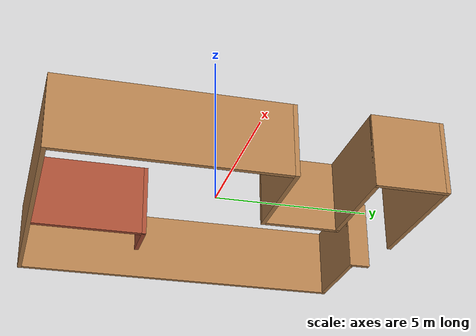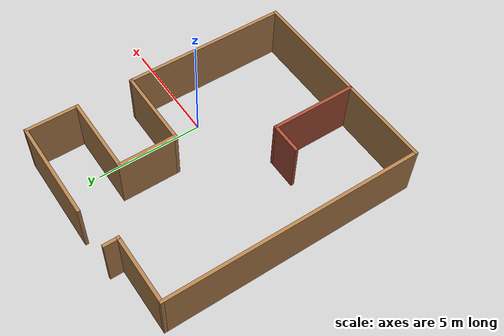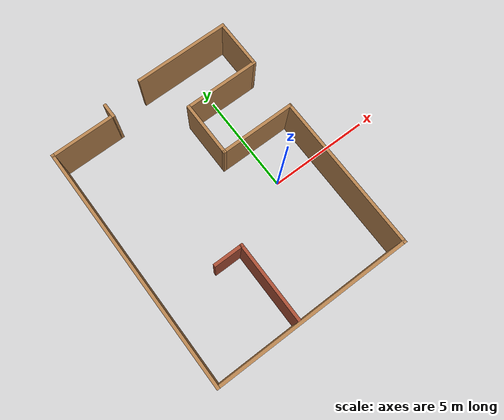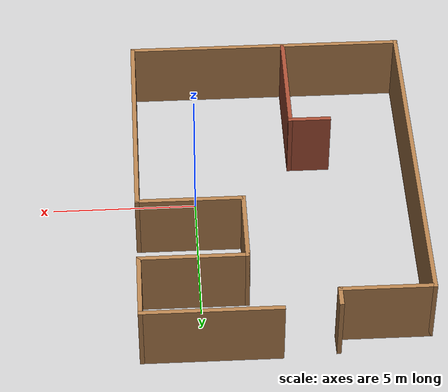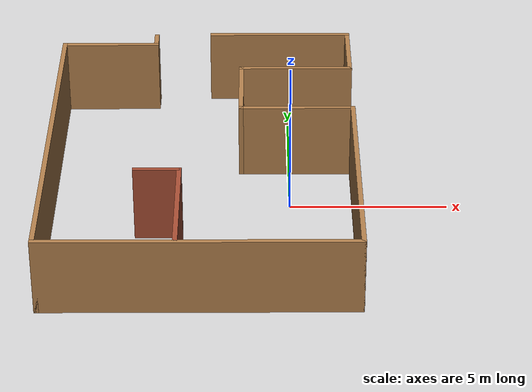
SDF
<?xml version='1.0'?>
<sdf version='1.7'>
  <model name='rtabmap.world'>
    <pose>-2.76052 0.706998 0 0 -0 0</pose>
    <link name='Wall_1'>
      <collision name='Wall_1_Collision'>
        <geometry>
          <box>
            <size>12 0.15 2.5</size>
          </box>
        </geometry>
        <pose>0 0 1.25 0 -0 0</pose>
      </collision>
      <visual name='Wall_1_Visual'>
        <pose>0 0 1.25 0 -0 0</pose>
        <geometry>
          <box>
            <size>12 0.15 2.5</size>
          </box>
        </geometry>
        <material>
          <script>
            <uri>file://media/materials/scripts/gazebo.material</uri>
            <name>Gazebo/Wood</name>
          </script>
          <ambient>1 1 1 1</ambient>
        </material>
        <meta>
          <layer>0</layer>
        </meta>
      </visual>
      <pose>-4.8 -0.349999 0 0 -0 -1.5708</pose>
    </link>
    <link name='Wall_10'>
      <collision name='Wall_10_Collision'>
        <geometry>
          <box>
            <size>3.25 0.15 2.5</size>
          </box>
        </geometry>
        <pose>0 0 1.25 0 -0 0</pose>
      </collision>
      <visual name='Wall_10_Visual'>
        <pose>0 0 1.25 0 -0 0</pose>
        <geometry>
          <box>
            <size>3.25 0.15 2.5</size>
          </box>
        </geometry>
        <material>
          <script>
            <uri>file://media/materials/scripts/gazebo.material</uri>
            <name>Gazebo/Wood</name>
          </script>
          <ambient>1 1 1 1</ambient>
        </material>
        <meta>
          <layer>0</layer>
        </meta>
      </visual>
      <pose>-3.25 5.575 0 0 -0 0</pose>
    </link>
    <link name='Wall_11'>
      <collision name='Wall_11_Collision'>
        <geometry>
          <box>
            <size>0.75 0.15 2.5</size>
          </box>
        </geometry>
        <pose>0 0 1.25 0 -0 0</pose>
      </collision>
      <visual name='Wall_11_Visual'>
        <pose>0 0 1.25 0 -0 0</pose>
        <geometry>
          <box>
            <size>0.75 0.15 2.5</size>
          </box>
        </geometry>
        <material>
          <script>
            <uri>file://media/materials/scripts/gazebo.material</uri>
            <name>Gazebo/Wood</name>
          </script>
          <ambient>1 1 1 1</ambient>
        </material>
        <meta>
          <layer>0</layer>
        </meta>
      </visual>
      <pose>-1.7 5.875 0 0 -0 1.5708</pose>
    </link>
    <link name='Wall_16'>
      <collision name='Wall_16_Collision'>
        <geometry>
          <box>
            <size>4 0.15 2.5</size>
          </box>
        </geometry>
        <pose>0 0 1.25 0 -0 0</pose>
      </collision>
      <visual name='Wall_16_Visual'>
        <pose>0 0 1.25 0 -0 0</pose>
        <geometry>
          <box>
            <size>4 0.15 2.5</size>
          </box>
        </geometry>
        <material>
          <script>
            <uri>file://media/materials/scripts/gazebo.material</uri>
            <name>Gazebo/Bricks</name>
          </script>
          <ambient>1 1 1 1</ambient>
        </material>
        <meta>
          <layer>0</layer>
        </meta>
      </visual>
      <pose>-0.669642 -4.30133 0 0 -0 1.5708</pose>
    </link>
    <link name='Wall_17'>
      <collision name='Wall_17_Collision'>
        <geometry>
          <box>
            <size>1.5 0.15 2.5</size>
          </box>
        </geometry>
        <pose>0 0 1.25 0 -0 0</pose>
      </collision>
      <visual name='Wall_17_Visual'>
        <pose>0 0 1.25 0 -0 0</pose>
        <geometry>
          <box>
            <size>1.5 0.15 2.5</size>
          </box>
        </geometry>
        <material>
          <script>
            <uri>file://media/materials/scripts/gazebo.material</uri>
            <name>Gazebo/Bricks</name>
          </script>
          <ambient>1 1 1 1</ambient>
        </material>
        <meta>
          <layer>0</layer>
        </meta>
      </visual>
      <pose>-1.34464 -2.37633 0 0 -0 3.14159</pose>
    </link>
    <link name='Wall_2'>
      <collision name='Wall_2_Collision'>
        <geometry>
          <box>
            <size>9.75 0.15 2.5</size>
          </box>
        </geometry>
        <pose>0 0 1.25 0 -0 0</pose>
      </collision>
      <visual name='Wall_2_Visual'>
        <pose>0 0 1.25 0 -0 0</pose>
        <geometry>
          <box>
            <size>9.75 0.15 2.5</size>
          </box>
        </geometry>
        <material>
          <script>
            <uri>file://media/materials/scripts/gazebo.material</uri>
            <name>Gazebo/Wood</name>
          </script>
          <ambient>1 1 1 1</ambient>
        </material>
        <meta>
          <layer>0</layer>
        </meta>
      </visual>
      <pose>0 -6.275 0 0 -0 0</pose>
    </link>
    <link name='Wall_3'>
      <collision name='Wall_3_Collision'>
        <geometry>
          <box>
            <size>7.75 0.15 2.5</size>
          </box>
        </geometry>
        <pose>0 0 1.25 0 -0 0</pose>
      </collision>
      <visual name='Wall_3_Visual'>
        <pose>0 0 1.25 0 -0 0</pose>
        <geometry>
          <box>
            <size>7.75 0.15 2.5</size>
          </box>
        </geometry>
        <material>
          <script>
            <uri>file://media/materials/scripts/gazebo.material</uri>
            <name>Gazebo/Wood</name>
          </script>
          <ambient>1 1 1 1</ambient>
        </material>
        <meta>
          <layer>0</layer>
        </meta>
      </visual>
      <pose>4.8 -2.475 0 0 -0 1.5708</pose>
    </link>
    <link name='Wall_4'>
      <collision name='Wall_4_Collision'>
        <geometry>
          <box>
            <size>3.75 0.15 2.5</size>
          </box>
        </geometry>
        <pose>0 0 1.25 0 -0 0</pose>
      </collision>
      <visual name='Wall_4_Visual'>
        <pose>0 0 1.25 0 -0 0</pose>
        <geometry>
          <box>
            <size>3.75 0.15 2.5</size>
          </box>
        </geometry>
        <material>
          <script>
            <uri>file://media/materials/scripts/gazebo.material</uri>
            <name>Gazebo/Wood</name>
          </script>
          <ambient>1 1 1 1</ambient>
        </material>
        <meta>
          <layer>0</layer>
        </meta>
      </visual>
      <pose>3 1.325 0 0 -0 3.14159</pose>
    </link>
    <link name='Wall_5'>
      <collision name='Wall_5_Collision'>
        <geometry>
          <box>
            <size>2.75 0.15 2.5</size>
          </box>
        </geometry>
        <pose>0 0 1.25 0 -0 0</pose>
      </collision>
      <visual name='Wall_5_Visual'>
        <pose>0 0 1.25 0 -0 0</pose>
        <geometry>
          <box>
            <size>2.75 0.15 2.5</size>
          </box>
        </geometry>
        <material>
          <script>
            <uri>file://media/materials/scripts/gazebo.material</uri>
            <name>Gazebo/Wood</name>
          </script>
          <ambient>1 1 1 1</ambient>
        </material>
        <meta>
          <layer>0</layer>
        </meta>
      </visual>
      <pose>1.2 2.625 0 0 -0 1.5708</pose>
    </link>
    <link name='Wall_6'>
      <collision name='Wall_6_Collision'>
        <geometry>
          <box>
            <size>3.75 0.15 2.5</size>
          </box>
        </geometry>
        <pose>0 0 1.25 0 -0 0</pose>
      </collision>
      <visual name='Wall_6_Visual'>
        <pose>0 0 1.25 0 -0 0</pose>
        <geometry>
          <box>
            <size>3.75 0.15 2.5</size>
          </box>
        </geometry>
        <material>
          <script>
            <uri>file://media/materials/scripts/gazebo.material</uri>
            <name>Gazebo/Wood</name>
          </script>
          <ambient>1 1 1 1</ambient>
        </material>
        <meta>
          <layer>0</layer>
        </meta>
      </visual>
      <pose>3 3.925 0 0 -0 0</pose>
    </link>
    <link name='Wall_7'>
      <collision name='Wall_7_Collision'>
        <geometry>
          <box>
            <size>2.5 0.15 2.5</size>
          </box>
        </geometry>
        <pose>0 0 1.25 0 -0 0</pose>
      </collision>
      <visual name='Wall_7_Visual'>
        <pose>0 0 1.25 0 -0 0</pose>
        <geometry>
          <box>
            <size>2.5 0.15 2.5</size>
          </box>
        </geometry>
        <material>
          <script>
            <uri>file://media/materials/scripts/gazebo.material</uri>
            <name>Gazebo/Wood</name>
          </script>
          <ambient>1 1 1 1</ambient>
        </material>
        <meta>
          <layer>0</layer>
        </meta>
      </visual>
      <pose>4.8 5.1 0 0 -0 1.5708</pose>
    </link>
    <link name='Wall_8'>
      <collision name='Wall_8_Collision'>
        <geometry>
          <box>
            <size>4.75 0.15 2.5</size>
          </box>
        </geometry>
        <pose>0 0 1.25 0 -0 0</pose>
      </collision>
      <visual name='Wall_8_Visual'>
        <pose>0 0 1.25 0 -0 0</pose>
        <geometry>
          <box>
            <size>4.75 0.15 2.5</size>
          </box>
        </geometry>
        <material>
          <script>
            <uri>file://media/materials/scripts/gazebo.material</uri>
            <name>Gazebo/Wood</name>
          </script>
          <ambient>1 1 1 1</ambient>
        </material>
        <meta>
          <layer>0</layer>
        </meta>
      </visual>
      <pose>2.5 6.275 0 0 -0 3.14159</pose>
    </link>
    <static>1</static>
  </model>
</sdf>
